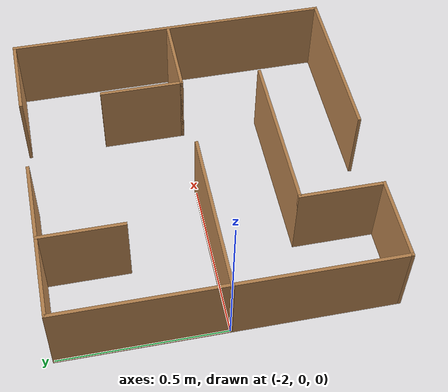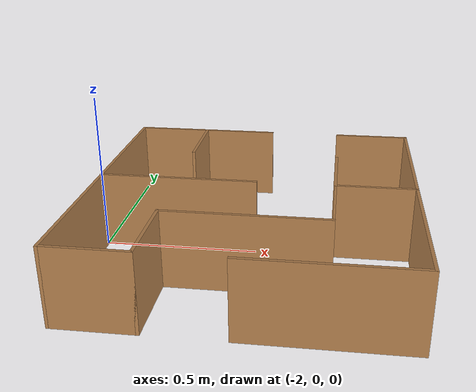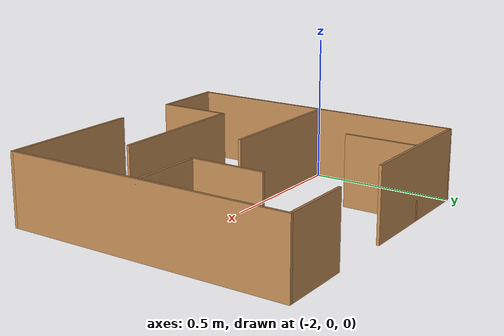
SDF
<?xml version='1.0'?>
<sdf version='1.7'>
  <model name='maze4x4'>
    <pose>-1.0025 0 0 0 -0 0</pose>
    <link name='Wall_1'>
      <collision name='Wall_1_Collision'>
        <geometry>
          <box>
            <size>1.01 0.01 0.25</size>
          </box>
        </geometry>
        <pose>0 0 0.125 0 -0 0</pose>
      </collision>
      <visual name='Wall_1_Visual'>
        <pose>0 0 0.125 0 -0 0</pose>
        <geometry>
          <box>
            <size>1.01 0.01 0.25</size>
          </box>
        </geometry>
        <material>
          <script>
            <uri>file://media/materials/scripts/gazebo.material</uri>
            <name>Gazebo/Wood</name>
          </script>
          <ambient>1 1 1 1</ambient>
        </material>
        <meta>
          <layer>0</layer>
        </meta>
      </visual>
      <pose>-0.9975 0 0 0 -0 1.5708</pose>
    </link>
    <link name='Wall_11'>
      <collision name='Wall_11_Collision'>
        <geometry>
          <box>
            <size>0.51 0.01 0.25</size>
          </box>
        </geometry>
        <pose>0 0 0.125 0 -0 0</pose>
      </collision>
      <visual name='Wall_11_Visual'>
        <pose>0 0 0.125 0 -0 0</pose>
        <geometry>
          <box>
            <size>0.51 0.01 0.25</size>
          </box>
        </geometry>
        <material>
          <script>
            <uri>file://media/materials/scripts/gazebo.material</uri>
            <name>Gazebo/Wood</name>
          </script>
          <ambient>1 1 1 1</ambient>
        </material>
        <meta>
          <layer>0</layer>
        </meta>
      </visual>
      <pose>-0.7475 0.5 0 0 -0 0</pose>
    </link>
    <link name='Wall_14'>
      <collision name='Wall_14_Collision'>
        <geometry>
          <box>
            <size>0.26 0.01 0.25</size>
          </box>
        </geometry>
        <pose>0 0 0.125 0 -0 0</pose>
      </collision>
      <visual name='Wall_14_Visual'>
        <pose>0 0 0.125 0 -0 0</pose>
        <geometry>
          <box>
            <size>0.26 0.01 0.25</size>
          </box>
        </geometry>
        <material>
          <script>
            <uri>file://media/materials/scripts/gazebo.material</uri>
            <name>Gazebo/Wood</name>
          </script>
          <ambient>1 1 1 1</ambient>
        </material>
        <meta>
          <layer>0</layer>
        </meta>
      </visual>
      <pose>-0.7475 0.375 0 0 -0 -1.5708</pose>
    </link>
    <link name='Wall_16'>
      <collision name='Wall_16_Collision'>
        <geometry>
          <box>
            <size>0.26 0.01 0.25</size>
          </box>
        </geometry>
        <pose>0 0 0.125 0 -0 0</pose>
      </collision>
      <visual name='Wall_16_Visual'>
        <pose>0 0 0.125 0 -0 0</pose>
        <geometry>
          <box>
            <size>0.26 0.01 0.25</size>
          </box>
        </geometry>
        <material>
          <script>
            <uri>file://media/materials/scripts/gazebo.material</uri>
            <name>Gazebo/Wood</name>
          </script>
          <ambient>1 1 1 1</ambient>
        </material>
        <meta>
          <layer>0</layer>
        </meta>
      </visual>
      <pose>-0.1225 0.5 0 0 -0 0</pose>
    </link>
    <link name='Wall_17'>
      <collision name='Wall_17_Collision'>
        <geometry>
          <box>
            <size>1.01 0.01 0.25</size>
          </box>
        </geometry>
        <pose>0 0 0.125 0 -0 0</pose>
      </collision>
      <visual name='Wall_17_Visual'>
        <pose>0 0 0.125 0 -0 0</pose>
        <geometry>
          <box>
            <size>1.01 0.01 0.25</size>
          </box>
        </geometry>
        <material>
          <script>
            <uri>file://media/materials/scripts/gazebo.material</uri>
            <name>Gazebo/Wood</name>
          </script>
          <ambient>1 1 1 1</ambient>
        </material>
        <meta>
          <layer>0</layer>
        </meta>
      </visual>
      <pose>0.0025 0 0 0 -0 -1.5708</pose>
    </link>
    <link name='Wall_19'>
      <collision name='Wall_19_Collision'>
        <geometry>
          <box>
            <size>0.51 0.01 0.25</size>
          </box>
        </geometry>
        <pose>0 0 0.125 0 -0 0</pose>
      </collision>
      <visual name='Wall_19_Visual'>
        <pose>0 0 0.125 0 -0 0</pose>
        <geometry>
          <box>
            <size>0.51 0.01 0.25</size>
          </box>
        </geometry>
        <material>
          <script>
            <uri>file://media/materials/scripts/gazebo.material</uri>
            <name>Gazebo/Wood</name>
          </script>
          <ambient>1 1 1 1</ambient>
        </material>
        <meta>
          <layer>0</layer>
        </meta>
      </visual>
      <pose>-0.7475 0 0 0 -0 0</pose>
    </link>
    <link name='Wall_21'>
      <collision name='Wall_21_Collision'>
        <geometry>
          <box>
            <size>0.51 0.01 0.25</size>
          </box>
        </geometry>
        <pose>0 0 0.125 0 -0 0</pose>
      </collision>
      <visual name='Wall_21_Visual'>
        <pose>0 0 0.125 0 -0 0</pose>
        <geometry>
          <box>
            <size>0.51 0.01 0.25</size>
          </box>
        </geometry>
        <material>
          <script>
            <uri>file://media/materials/scripts/gazebo.material</uri>
            <name>Gazebo/Wood</name>
          </script>
          <ambient>1 1 1 1</ambient>
        </material>
        <meta>
          <layer>0</layer>
        </meta>
      </visual>
      <pose>-0.2475 -0.5 0 0 -0 3.14159</pose>
    </link>
    <link name='Wall_23'>
      <collision name='Wall_23_Collision'>
        <geometry>
          <box>
            <size>0.26 0.01 0.25</size>
          </box>
        </geometry>
        <pose>0 0 0.125 0 -0 0</pose>
      </collision>
      <visual name='Wall_23_Visual'>
        <pose>0 0 0.125 0 -0 0</pose>
        <geometry>
          <box>
            <size>0.26 0.01 0.25</size>
          </box>
        </geometry>
        <material>
          <script>
            <uri>file://media/materials/scripts/gazebo.material</uri>
            <name>Gazebo/Wood</name>
          </script>
          <ambient>1 1 1 1</ambient>
        </material>
        <meta>
          <layer>0</layer>
        </meta>
      </visual>
      <pose>-0.1225 0 0 0 -0 3.14159</pose>
    </link>
    <link name='Wall_24'>
      <collision name='Wall_24_Collision'>
        <geometry>
          <box>
            <size>0.01 0.01 0.25</size>
          </box>
        </geometry>
        <pose>0 0 0.125 0 -0 0</pose>
      </collision>
      <visual name='Wall_24_Visual'>
        <pose>0 0 0.125 0 -0 0</pose>
        <geometry>
          <box>
            <size>0.01 0.01 0.25</size>
          </box>
        </geometry>
        <material>
          <script>
            <uri>file://media/materials/scripts/gazebo.material</uri>
            <name>Gazebo/Wood</name>
          </script>
          <ambient>1 1 1 1</ambient>
        </material>
        <meta>
          <layer>0</layer>
        </meta>
      </visual>
      <pose>-0.2475 0 0 0 -0 3.14159</pose>
    </link>
    <link name='Wall_29'>
      <collision name='Wall_29_Collision'>
        <geometry>
          <box>
            <size>0.26 0.01 0.25</size>
          </box>
        </geometry>
        <pose>0 0 0.125 0 -0 0</pose>
      </collision>
      <visual name='Wall_29_Visual'>
        <pose>0 0 0.125 0 -0 0</pose>
        <geometry>
          <box>
            <size>0.26 0.01 0.25</size>
          </box>
        </geometry>
        <material>
          <script>
            <uri>file://media/materials/scripts/gazebo.material</uri>
            <name>Gazebo/Wood</name>
          </script>
          <ambient>1 1 1 1</ambient>
        </material>
        <meta>
          <layer>0</layer>
        </meta>
      </visual>
      <pose>-0.2475 0.125 0 0 -0 1.5708</pose>
    </link>
    <link name='Wall_5'>
      <collision name='Wall_5_Collision'>
        <geometry>
          <box>
            <size>0.01 0.01 0.25</size>
          </box>
        </geometry>
        <pose>0 0 0.125 0 -0 0</pose>
      </collision>
      <visual name='Wall_5_Visual'>
        <pose>0 0 0.125 0 -0 0</pose>
        <geometry>
          <box>
            <size>0.01 0.01 0.25</size>
          </box>
        </geometry>
        <material>
          <script>
            <uri>file://media/materials/scripts/gazebo.material</uri>
            <name>Gazebo/Wood</name>
          </script>
          <ambient>1 1 1 1</ambient>
        </material>
        <meta>
          <layer>0</layer>
        </meta>
      </visual>
      <pose>-0.9975 0.5 0 0 -0 0</pose>
    </link>
    <link name='Wall_7'>
      <collision name='Wall_7_Collision'>
        <geometry>
          <box>
            <size>0.26 0.01 0.25</size>
          </box>
        </geometry>
        <pose>0 0 0.125 0 -0 0</pose>
      </collision>
      <visual name='Wall_7_Visual'>
        <pose>0 0 0.125 0 -0 0</pose>
        <geometry>
          <box>
            <size>0.26 0.01 0.25</size>
          </box>
        </geometry>
        <material>
          <script>
            <uri>file://media/materials/scripts/gazebo.material</uri>
            <name>Gazebo/Wood</name>
          </script>
          <ambient>1 1 1 1</ambient>
        </material>
        <meta>
          <layer>0</layer>
        </meta>
      </visual>
      <pose>-0.8725 -0.5 0 0 -0 0</pose>
    </link>
    <link name='Wall_8'>
      <collision name='Wall_8_Collision'>
        <geometry>
          <box>
            <size>0.26 0.01 0.25</size>
          </box>
        </geometry>
        <pose>0 0 0.125 0 -0 0</pose>
      </collision>
      <visual name='Wall_8_Visual'>
        <pose>0 0 0.125 0 -0 0</pose>
        <geometry>
          <box>
            <size>0.26 0.01 0.25</size>
          </box>
        </geometry>
        <material>
          <script>
            <uri>file://media/materials/scripts/gazebo.material</uri>
            <name>Gazebo/Wood</name>
          </script>
          <ambient>1 1 1 1</ambient>
        </material>
        <meta>
          <layer>0</layer>
        </meta>
      </visual>
      <pose>-0.7475 -0.375 0 0 -0 1.5708</pose>
    </link>
    <link name='Wall_9'>
      <collision name='Wall_9_Collision'>
        <geometry>
          <box>
            <size>0.51 0.01 0.25</size>
          </box>
        </geometry>
        <pose>0 0 0.125 0 -0 0</pose>
      </collision>
      <visual name='Wall_9_Visual'>
        <pose>0 0 0.125 0 -0 0</pose>
        <geometry>
          <box>
            <size>0.51 0.01 0.25</size>
          </box>
        </geometry>
        <material>
          <script>
            <uri>file://media/materials/scripts/gazebo.material</uri>
            <name>Gazebo/Wood</name>
          </script>
          <ambient>1 1 1 1</ambient>
        </material>
        <meta>
          <layer>0</layer>
        </meta>
      </visual>
      <pose>-0.4975 -0.25 0 0 -0 0</pose>
    </link>
    <static>1</static>
  </model>
</sdf>
